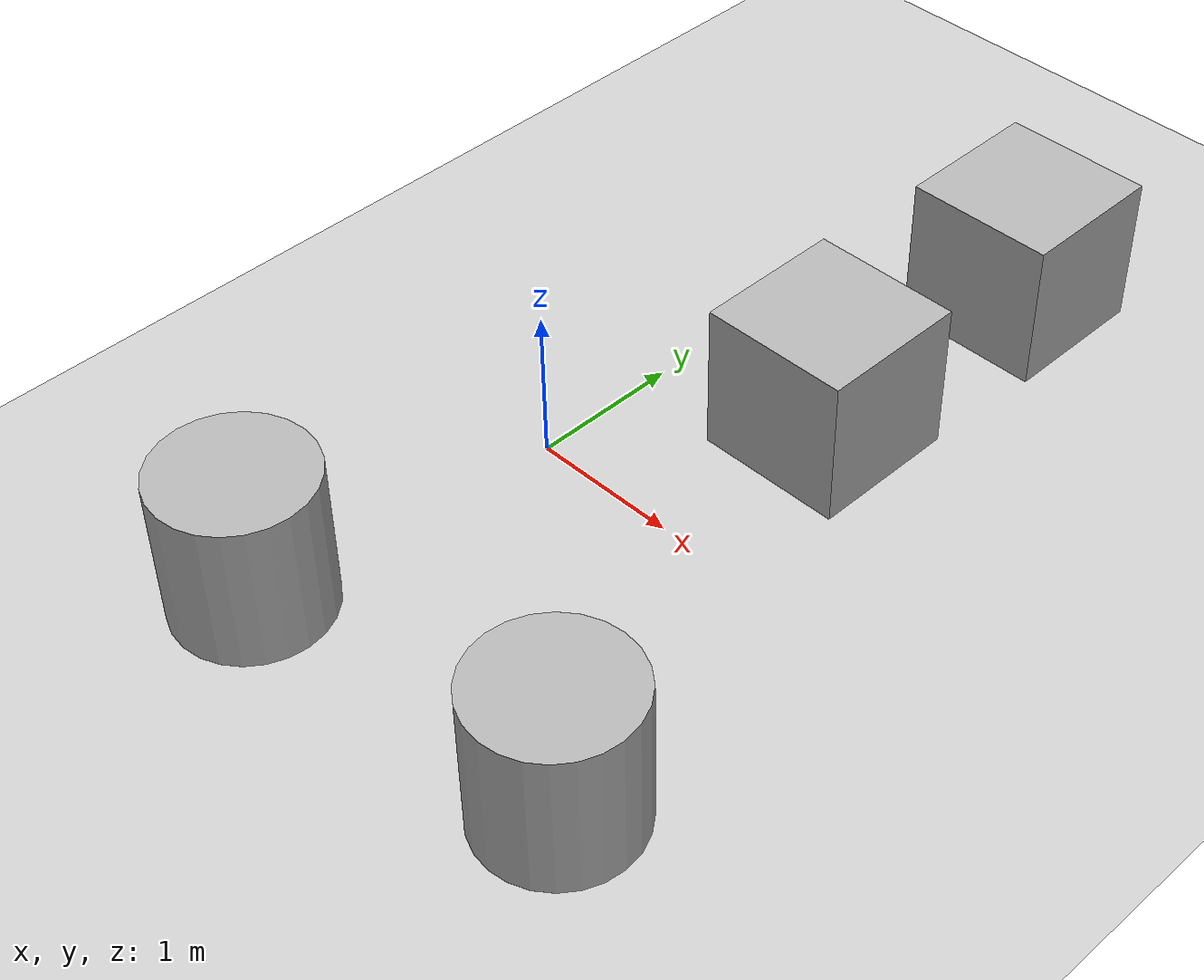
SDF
<sdf version='1.10'>
  <world name='empty'>
    <physics name='1ms' type='ignored'>
      <max_step_size>0.001</max_step_size>
      <real_time_factor>1</real_time_factor>
      <real_time_update_rate>1000</real_time_update_rate>
    </physics>
    <plugin name='gz::sim::systems::Physics' filename='gz-sim-physics-system'/>
    <plugin name='gz::sim::systems::UserCommands' filename='gz-sim-user-commands-system'/>
    <plugin name='gz::sim::systems::SceneBroadcaster' filename='gz-sim-scene-broadcaster-system'/>
    <plugin name='gz::sim::systems::Sensors' filename='gz-sim-sensors-system'>
      <render_engine>ogre2</render_engine>
    </plugin>
    <plugin name='gz::sim::systems::Contact' filename='gz-sim-contact-system'/>
    <gravity>0 0 -9.8000000000000007</gravity>
    <magnetic_field>5.5644999999999998e-06 2.2875799999999999e-05 -4.2388400000000002e-05</magnetic_field>
    <atmosphere type='adiabatic'/>
    <scene>
      <ambient>0.400000006 0.400000006 0.400000006 1</ambient>
      <background>0.699999988 0.699999988 0.699999988 1</background>
      <shadows>true</shadows>
    </scene>
    <model name='ground_plane'>
      <static>true</static>
      <link name='link'>
        <collision name='collision'>
          <geometry>
            <plane>
              <normal>0 0 1</normal>
              <size>100 100</size>
            </plane>
          </geometry>
          <surface>
            <friction>
              <ode/>
            </friction>
            <bounce/>
            <contact/>
          </surface>
        </collision>
        <visual name='visual'>
          <geometry>
            <plane>
              <normal>0 0 1</normal>
              <size>100 100</size>
            </plane>
          </geometry>
          <material>
            <ambient>0.800000012 0.800000012 0.800000012 1</ambient>
            <diffuse>0.800000012 0.800000012 0.800000012 1</diffuse>
            <specular>0.800000012 0.800000012 0.800000012 1</specular>
          </material>
        </visual>
        <pose>0 0 0 0 0 0</pose>
        <inertial>
          <pose>0 0 0 0 0 0</pose>
          <mass>1</mass>
          <inertia>
            <ixx>1</ixx>
            <ixy>0</ixy>
            <ixz>0</ixz>
            <iyy>1</iyy>
            <iyz>0</iyz>
            <izz>1</izz>
          </inertia>
        </inertial>
        <enable_wind>false</enable_wind>
      </link>
      <pose>0 0 0 0 0 0</pose>
      <self_collide>false</self_collide>
    </model>
    <model name='box'>
      <pose>1.1419199705123901 1.2432899475097656 0.5 2.7704199427783245e-17 -2.7423300472288813e-17 8.2855300858682933e-19</pose>
      <link name='box_link'>
        <inertial>
          <inertia>
            <ixx>0.16666</ixx>
            <ixy>0</ixy>
            <ixz>0</ixz>
            <iyy>0.16666</iyy>
            <iyz>0</iyz>
            <izz>0.16666</izz>
          </inertia>
          <mass>1</mass>
          <pose>0 0 0 0 0 0</pose>
        </inertial>
        <collision name='box_collision'>
          <geometry>
            <box>
              <size>1 1 1</size>
            </box>
          </geometry>
          <surface>
            <friction>
              <ode/>
            </friction>
            <bounce/>
            <contact/>
          </surface>
        </collision>
        <visual name='box_visual'>
          <geometry>
            <box>
              <size>1 1 1</size>
            </box>
          </geometry>
          <material>
            <ambient>0.300000012 0.300000012 0.300000012 1</ambient>
            <diffuse>0.699999988 0.699999988 0.699999988 1</diffuse>
            <specular>1 1 1 1</specular>
          </material>
        </visual>
        <pose>0 0 0 0 0 0</pose>
        <enable_wind>false</enable_wind>
      </link>
      <static>false</static>
      <self_collide>false</self_collide>
    </model>
    <model name='box_0'>
      <pose>1.1905391295381715 3.0513817071496536 0.49999999019962699 2.5971613972033446e-17 -2.8930394594342571e-17 4.378231223040191e-18</pose>
      <link name='box_link'>
        <inertial>
          <inertia>
            <ixx>0.16666</ixx>
            <ixy>0</ixy>
            <ixz>0</ixz>
            <iyy>0.16666</iyy>
            <iyz>0</iyz>
            <izz>0.16666</izz>
          </inertia>
          <mass>1</mass>
          <pose>0 0 0 0 0 0</pose>
        </inertial>
        <collision name='box_collision'>
          <geometry>
            <box>
              <size>1 1 1</size>
            </box>
          </geometry>
          <surface>
            <friction>
              <ode/>
            </friction>
            <bounce/>
            <contact/>
          </surface>
        </collision>
        <visual name='box_visual'>
          <geometry>
            <box>
              <size>1 1 1</size>
            </box>
          </geometry>
          <material>
            <ambient>0.300000012 0.300000012 0.300000012 1</ambient>
            <diffuse>0.699999988 0.699999988 0.699999988 1</diffuse>
            <specular>1 1 1 1</specular>
          </material>
        </visual>
        <pose>0 0 0 0 0 0</pose>
        <enable_wind>false</enable_wind>
      </link>
      <static>false</static>
      <self_collide>false</self_collide>
    </model>
    <model name='cylinder'>
      <pose>-0.23239874692469975 -2.0629516567329635 0.49999999631413172 -3.6119852248037492e-17 2.7787565890143717e-17 2.2697389868810138e-17</pose>
      <link name='cylinder_link'>
        <inertial>
          <inertia>
            <ixx>0.14580000000000001</ixx>
            <ixy>0</ixy>
            <ixz>0</ixz>
            <iyy>0.14580000000000001</iyy>
            <iyz>0</iyz>
            <izz>0.125</izz>
          </inertia>
          <mass>1</mass>
          <pose>0 0 0 0 0 0</pose>
        </inertial>
        <collision name='cylinder_collision'>
          <geometry>
            <cylinder>
              <radius>0.5</radius>
              <length>1</length>
            </cylinder>
          </geometry>
          <surface>
            <friction>
              <ode/>
            </friction>
            <bounce/>
            <contact/>
          </surface>
        </collision>
        <visual name='cylinder_visual'>
          <geometry>
            <cylinder>
              <radius>0.5</radius>
              <length>1</length>
            </cylinder>
          </geometry>
          <material>
            <ambient>0.300000012 0.300000012 0.300000012 1</ambient>
            <diffuse>0.699999988 0.699999988 0.699999988 1</diffuse>
            <specular>1 1 1 1</specular>
          </material>
        </visual>
        <pose>0 0 0 0 0 0</pose>
        <enable_wind>false</enable_wind>
      </link>
      <static>false</static>
      <self_collide>false</self_collide>
    </model>
    <model name='cylinder_0'>
      <pose>2.1143734455108643 -1.8942500352859497 0.5 -2.5226099075062685e-18 -6.701830144204124e-18 4.527339817876257e-18</pose>
      <link name='cylinder_link'>
        <inertial>
          <inertia>
            <ixx>0.14580000000000001</ixx>
            <ixy>0</ixy>
            <ixz>0</ixz>
            <iyy>0.14580000000000001</iyy>
            <iyz>0</iyz>
            <izz>0.125</izz>
          </inertia>
          <mass>1</mass>
          <pose>0 0 0 0 0 0</pose>
        </inertial>
        <collision name='cylinder_collision'>
          <geometry>
            <cylinder>
              <radius>0.5</radius>
              <length>1</length>
            </cylinder>
          </geometry>
          <surface>
            <friction>
              <ode/>
            </friction>
            <bounce/>
            <contact/>
          </surface>
        </collision>
        <visual name='cylinder_visual'>
          <geometry>
            <cylinder>
              <radius>0.5</radius>
              <length>1</length>
            </cylinder>
          </geometry>
          <material>
            <ambient>0.300000012 0.300000012 0.300000012 1</ambient>
            <diffuse>0.699999988 0.699999988 0.699999988 1</diffuse>
            <specular>1 1 1 1</specular>
          </material>
        </visual>
        <pose>0 0 0 0 0 0</pose>
        <enable_wind>false</enable_wind>
      </link>
      <static>false</static>
      <self_collide>false</self_collide>
    </model>
    <light name='sun' type='directional'>
      <pose>0 0 10 0 0 0</pose>
      <cast_shadows>true</cast_shadows>
      <intensity>1</intensity>
      <direction>-0.5 0.10000000000000001 -0.90000000000000002</direction>
      <diffuse>0.800000012 0.800000012 0.800000012 1</diffuse>
      <specular>0.200000003 0.200000003 0.200000003 1</specular>
      <attenuation>
        <range>1000</range>
        <linear>0.01</linear>
        <constant>0.90000000000000002</constant>
        <quadratic>0.001</quadratic>
      </attenuation>
      <spot>
        <inner_angle>0</inner_angle>
        <outer_angle>0</outer_angle>
        <falloff>0</falloff>
      </spot>
    </light>
  </world>
</sdf>
